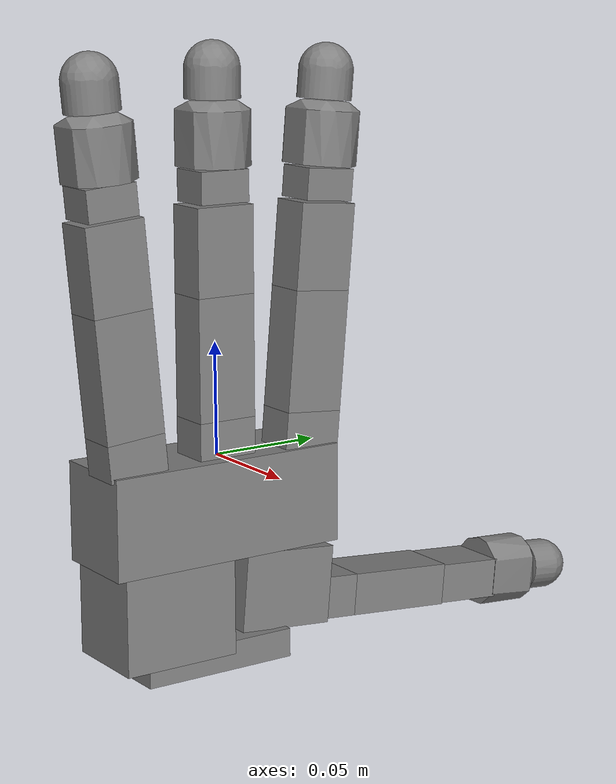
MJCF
<mujoco model="allegro_digit360_right_calib_free">
  <compiler angle="radian"/>

  <asset>
    <mesh name="digit2_sensor_base" file="digit2_sensor_base.obj"/>
    <mesh name="digit2_sensor_base_tip" file="digit2_sensor_base_tip.obj"/>
  </asset>

  <worldbody>
    <geom size="0.0207 0.056 0.0224" pos="-0.009 0 -0.023" type="box"/>
    <geom size="0.0207 0.0269 0.0214" pos="-0.009 -0.0253 -0.0667" type="box"/>
    <geom size="0.0207 0.036 0.0065" pos="-0.0093 -0.00557 -0.08874" type="box"/>
    <body name="link_0_0" pos="0 0.0435 -0.001542" quat="0.999048 -0.0436194 0 0">
      <joint name="joint_0_0" pos="0 0 0" axis="0 0 1" range="-0.47 0.47" damping="0.1" />
      <geom size="0.0098 0.01375 0.0082" pos="0 0 0.0082" type="box"/>
      <body name="link_1_0" pos="0 0 0.0164">
        <inertial pos="0 0 0" quat="0.707107 0.707107 0 0" mass="0.065" diaginertia="7.95654e-05 7.95654e-05 2.47089e-05"/>
        <joint name="joint_1_0" pos="0 0 0" axis="0 1 0" range="-0.196 1.61" damping="0.1"/>
        <geom size="0.0098 0.01375 0.027" pos="0 0 0.027" type="box"/>
        <body name="link_2_0" pos="0 0 0.054">
          <inertial pos="0 0 0" quat="0.707107 0.707107 0 0" mass="0.0355" diaginertia="2.63979e-05 2.63979e-05 1.34949e-05"/>
          <joint name="joint_2_0" pos="0 0 0" axis="0 1 0" range="-0.174 1.709"  damping="0.1"/>
          <geom size="0.0098 0.01375 0.0192" pos="0 0 0.0192" type="box"/>
          <body name="link_3_0" pos="0 0 0.0384">
            <inertial pos="0.000284718 -8.70599e-06 0.0281196" quat="0.999981 9.7372e-05 0.00325927 -0.00522168" mass="0.0390727" diaginertia="2.18269e-05 2.10129e-05 7.73231e-06"/>
            <joint name="joint_3_0" pos="0 0 0" axis="0 1 0" range="-0.227 1.618"  damping="0.1"/>
            <geom size="0.0098 0.01175 0.007" pos="0 0 0.008" type="box"/>
            <geom pos="0 0 0.02" quat="1 0 0 0" type="mesh" mesh="digit2_sensor_base"/>
            <geom pos="0 0 0.02" type="mesh" mesh="digit2_sensor_base_tip"/>
          </body>
        </body>
      </body>
    </body>
    <body name="link_4_0" pos="0 0 0.0007">
      <inertial pos="0 0 0" quat="0.707107 0.707107 0 0" mass="0.0119" diaginertia="1.01667e-06 1.01667e-06 6.47677e-07"/>
      <joint name="joint_4_0" pos="0 0 0" axis="0 0 1" range="-0.47 0.47"/>
      <geom size="0.0098 0.01375 0.0082" pos="0 0 0.0082" type="box"/>
      <body name="link_5_0" pos="0 0 0.0164">
        <inertial pos="0 0 0" quat="0.707107 0.707107 0 0" mass="0.065" diaginertia="7.95654e-05 7.95654e-05 2.47089e-05"/>
        <joint name="joint_5_0" pos="0 0 0" axis="0 1 0" range="-0.196 1.61"/>
        <geom size="0.0098 0.01375 0.027" pos="0 0 0.027" type="box"/>
        <body name="link_6_0" pos="0 0 0.054">
          <inertial pos="0 0 0" quat="0.707107 0.707107 0 0" mass="0.0355" diaginertia="2.63979e-05 2.63979e-05 1.34949e-05"/>
          <joint name="joint_6_0" pos="0 0 0" axis="0 1 0" range="-0.174 1.709"/>
          <geom size="0.0098 0.01375 0.0192" pos="0 0 0.0192" type="box"/>
          <body name="link_7_0" pos="0 0 0.0384">
            <inertial pos="0.000284718 -8.70599e-06 0.0281196" quat="0.999981 9.7372e-05 0.00325927 -0.00522168" mass="0.0390727" diaginertia="2.18269e-05 2.10129e-05 7.73231e-06"/>
            <joint name="joint_7_0" pos="0 0 0" axis="0 1 0" range="-0.227 1.618"/>
            <geom size="0.0098 0.01175 0.007" pos="0 0 0.008" type="box"/>
            <geom pos="0 0 0.02" quat="1 0 0 0" type="mesh" mesh="digit2_sensor_base"/>
            <geom pos="0 0 0.02" type="mesh" mesh="digit2_sensor_base_tip"/>
          </body>
        </body>
      </body>
    </body>
    <body name="link_8_0" pos="0 -0.0435 -0.001542" quat="0.999048 0.0436194 0 0">
      <inertial pos="0 0 0" quat="0.707107 0.707107 0 0" mass="0.0119" diaginertia="1.01667e-06 1.01667e-06 6.47677e-07"/>
      <joint name="joint_8_0" pos="0 0 0" axis="0 0 1" range="-0.47 0.47"/>
      <geom size="0.0098 0.01375 0.0082" pos="0 0 0.0082" type="box"/>
      <body name="link_9_0" pos="0 0 0.0164">
        <inertial pos="0 0 0" quat="0.707107 0.707107 0 0" mass="0.065" diaginertia="7.95654e-05 7.95654e-05 2.47089e-05"/>
        <joint name="joint_9_0" pos="0 0 0" axis="0 1 0" range="-0.196 1.61"/>
        <geom size="0.0098 0.01375 0.027" pos="0 0 0.027" type="box"/>
        <body name="link_10_0" pos="0 0 0.054">
          <inertial pos="0 0 0" quat="0.707107 0.707107 0 0" mass="0.0355" diaginertia="2.63979e-05 2.63979e-05 1.34949e-05"/>
          <joint name="joint_10_0" pos="0 0 0" axis="0 1 0" range="-0.174 1.709"/>
          <geom size="0.0098 0.01375 0.0192" pos="0 0 0.0192" type="box"/>
          <body name="link_11_0" pos="0 0 0.0384">
            <inertial pos="0.000284718 -8.70599e-06 0.0281196" quat="0.999981 9.7372e-05 0.00325927 -0.00522168" mass="0.0390727" diaginertia="2.18269e-05 2.10129e-05 7.73231e-06"/>
            <joint name="joint_11_0" pos="0 0 0" axis="0 1 0" range="-0.227 1.618"/>
            <geom size="0.0098 0.01175 0.007" pos="0 0 0.008" type="box"/>
            <geom pos="0 0 0.02" quat="1 0 0 0" type="mesh" mesh="digit2_sensor_base"/>
            <geom pos="0 0 0.02" type="mesh" mesh="digit2_sensor_base_tip"/>
          </body>
        </body>
      </body>
    </body>
    <body name="link_12_0" pos="-0.0182 0.019333 -0.045987" quat="0.477714 -0.521334 -0.521334 -0.477714">
      <inertial pos="0 0 0" quat="0.707107 0.707107 0 0" mass="0.0176" diaginertia="1.89273e-05 1.89273e-05 1.43008e-05"/>
      <joint name="joint_12_0" pos="0 0 0" axis="-1 0 0" range="0.263 1.396"/>
      <geom size="0.0179 0.017 0.02275" pos="-0.0179 0.009 0.0145" type="box"/>
      <body name="link_13_0" pos="-0.027 0.005 0.0399">
        <inertial pos="0 0 0" quat="0.707107 0 0 0.707107" mass="0.0119" diaginertia="4.52363e-06 4.24251e-06 4.24251e-06"/>
        <joint name="joint_13_0" pos="0 0 0" axis="0 0 1" range="-0.105 1.163"/>
        <geom size="0.0098 0.01375 0.00885" pos="0 0 0.00885" type="box"/>
        <body name="link_14_0" pos="0 0 0.0177">
          <inertial pos="0 0 0" quat="0.707107 0.707107 0 0" mass="0.038" diaginertia="4.3044e-05 4.3044e-05 1.44452e-05"/>
          <joint name="joint_14_0" pos="0 0 0" axis="0 1 0" range="-0.189 1.644"/>
          <geom size="0.0098 0.01375 0.0257" pos="0 0 0.0257" type="box"/>
          <body name="link_15_0" pos="0 0 0.0514">
            <inertial pos="0.000162945 -4.98247e-06 0.0226978" quat="0.999995 0.000154911 0.00320243 -0.000237557" mass="0.0682727" diaginertia="8.62908e-05 6.83558e-05 3.59533e-05"/>
            <joint name="joint_15_0" pos="0 0 0" axis="0 1 0" range="-0.162 1.719"/>
            <geom size="0.0093 0.01375 0.01615" pos="0 0 0.01615" type="box"/>
            <geom pos="0 0 0.0353" quat="1 0 0 0" type="mesh" mesh="digit2_sensor_base"/>
            <geom pos="0 0 0.0353" type="mesh" mesh="digit2_sensor_base_tip"/>
          </body>
        </body>
      </body>
    </body>
  </worldbody>

  <actuator>
    <position name="joint_0_0_ctrl"  joint="joint_0_0" kp="1"/>
    <position name="joint_1_0_ctrl"  joint="joint_1_0" kp="1"/>
    <position name="joint_2_0_ctrl"  joint="joint_2_0" kp="1"/>
    <position name="joint_3_0_ctrl"  joint="joint_3_0" kp="1"/>
  </actuator>
</mujoco>
